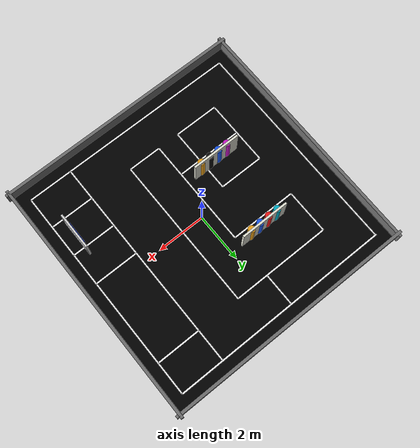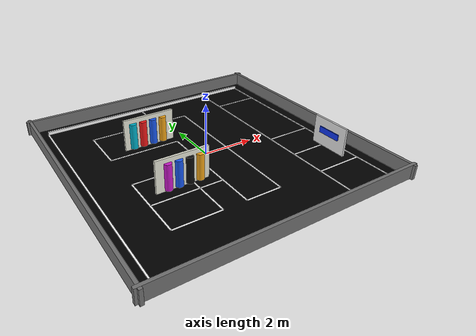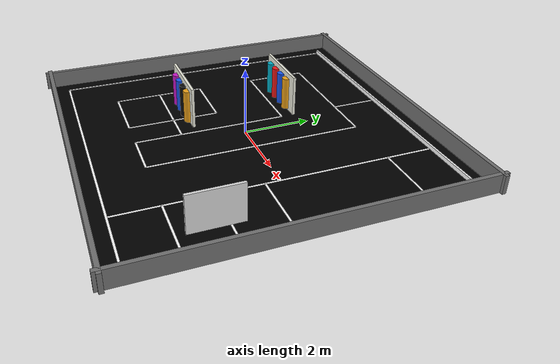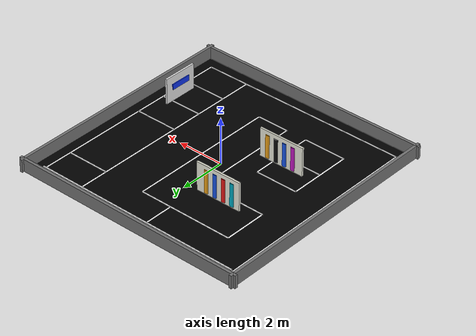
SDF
<?xml version="1.0"?>
<sdf version="1.6">
  <world name="smart_community">
    <plugin name="ros_api" filename="libgazebo_ros_api_plugin.so"/>

    <gravity>0 0 -9.8</gravity>
    <scene>
      <ambient>0.45 0.45 0.45 1</ambient>
      <background>0.72 0.74 0.76 1</background>
      <shadows>true</shadows>
    </scene>
    <gui fullscreen="0">
      <camera name="user_camera">
        <pose>0 -8 7 1.05 0 0</pose>
        <view_controller>orbit</view_controller>
      </camera>
    </gui>

    <light name="sun" type="directional">
      <pose>0 0 10 0 0 0</pose>
      <diffuse>0.9 0.9 0.85 1</diffuse>
      <specular>0.2 0.2 0.2 1</specular>
      <direction>-0.4 0.2 -0.9</direction>
    </light>

    <model name="map_floor">
      <static>true</static>
      <pose>0 0 0 0 0 0</pose>
      <link name="link">
        <collision name="collision"><geometry><box><size>10 10 0.04</size></box></geometry></collision>
        <visual name="black_map"><pose>0 0 0.025 0 0 0</pose><geometry><box><size>10 10 0.03</size></box></geometry><material><ambient>0 0 0 1</ambient><diffuse>0 0 0 1</diffuse></material></visual>
      </link>
    </model>

    <model name="map_white_lines">
      <static>true</static>
      <link name="lines">
        <!-- A1 outer_bottom | 0-10坐标 中心线坐标: (0,0) 到 (10,0) | 0-10占地: 左下(0,-0.03) 到 右上(10,0.03) | Gazebo中心: (0,-4.55,0.0405), Gazebo尺寸: 9.1 x 0.06 x 0.001 -->
        <visual name="A1_outer_bottom">
          <pose>0 -4.55 0.0405 0 0 0</pose>
          <geometry><box><size>9.1 0.06 0.001</size></box></geometry>
          <material><ambient>1 1 1 1</ambient><diffuse>1 1 1 1</diffuse></material>
        </visual>
        <!-- A2 outer_left | 0-10坐标 中心线坐标: (0,0) 到 (0,10) | 0-10占地: 左下(-0.03,0) 到 右上(0.03,10) | Gazebo中心: (-4.55,0,0.0405), Gazebo尺寸: 0.06 x 9.1 x 0.001 -->
        <visual name="A2_outer_left">
          <pose>-4.55 0 0.045 0 0 0</pose>
          <geometry><box><size>0.06 9.1 0.01</size></box></geometry>
          <material><ambient>1 1 1 1</ambient><diffuse>1 1 1 1</diffuse></material>
        </visual>
        <!-- A3 outer_top | 0-10坐标 中心线坐标: (0,10) 到 (10,10) | 0-10占地: 左下(0,9.97) 到 右上(10,10.03) | Gazebo中心: (0,4.55,0.0405), Gazebo尺寸: 9.1 x 0.06 x 0.001 -->
        <visual name="A3_outer_top">
          <pose>0 4.55 0.1025 0 0 0</pose>
          <geometry><box><size>9.1 0.06 0.125</size></box></geometry>
          <material><ambient>1 1 1 1</ambient><diffuse>1 1 1 1</diffuse></material>
        </visual>
        <!-- A4 outer_right | 0-10坐标 中心线坐标: (10,0) 到 (10,10) | 0-10占地: 左下(9.97,0) 到 右上(10.03,10) | Gazebo中心: (4.55,0,0.0405), Gazebo尺寸: 0.06 x 9.1 x 0.001 -->
        <visual name="A4_outer_right">
          <pose>4.55 0 0.0405 0 0 0</pose>
          <geometry><box><size>0.06 9.1 0.001</size></box></geometry>
          <material><ambient>1 1 1 1</ambient><diffuse>1 1 1 1</diffuse></material>
        </visual>
        <!-- B1 parking_top | 0-10坐标 中心线坐标: (8,8.5) 到 (10,8.5) | 0-10占地: 左下(8,8.47) 到 右上(10,8.53) | Gazebo中心: (3.64,3.185,0.0405), Gazebo尺寸: 1.82 x 0.06 x 0.001 -->
        <visual name="B1_parking_top">
          <pose>3.64 3.185 0.0405 0 0 0</pose>
          <geometry><box><size>1.82 0.06 0.001</size></box></geometry>
          <material><ambient>1 1 1 1</ambient><diffuse>1 1 1 1</diffuse></material>
        </visual>
        <!-- B2 parking_mid | 0-10坐标 中心线坐标: (8,4.5) 到 (10,4.5) | 0-10占地: 左下(8,4.47) 到 右上(10,4.53) | Gazebo中心: (3.64,-0.455,0.0405), Gazebo尺寸: 1.82 x 0.06 x 0.001 -->
        <visual name="B2_parking_mid">
          <pose>3.64 -0.455 0.0405 0 0 0</pose>
          <geometry><box><size>1.82 0.06 0.001</size></box></geometry>
          <material><ambient>1 1 1 1</ambient><diffuse>1 1 1 1</diffuse></material>
        </visual>
        <!-- B3 parking_lower_mid | 0-10坐标 中心线坐标: (8,3) 到 (10,3) | 0-10占地: 左下(8,2.97) 到 右上(10,3.03) | Gazebo中心: (3.64,-1.82,0.0405), Gazebo尺寸: 1.82 x 0.06 x 0.001 -->
        <visual name="B3_parking_lower_mid">
          <pose>3.64 -1.82 0.0405 0 0 0</pose>
          <geometry><box><size>1.82 0.06 0.001</size></box></geometry>
          <material><ambient>1 1 1 1</ambient><diffuse>1 1 1 1</diffuse></material>
        </visual>
        <!-- B4 parking_bottom | 0-10坐标 中心线坐标: (8,1.5) 到 (10,1.5) | 0-10占地: 左下(8,1.47) 到 右上(10,1.53) | Gazebo中心: (3.64,-3.185,0.0405), Gazebo尺寸: 1.82 x 0.06 x 0.001 -->
        <visual name="B4_parking_bottom">
          <pose>3.64 -3.185 0.0405 0 0 0</pose>
          <geometry><box><size>1.82 0.06 0.001</size></box></geometry>
          <material><ambient>1 1 1 1</ambient><diffuse>1 1 1 1</diffuse></material>
        </visual>
        <!-- B5 right_lane_left | 0-10坐标 中心线坐标: (8,0) 到 (8,10) | 0-10占地: 左下(7.97,0) 到 右上(8.03,10) | Gazebo中心: (2.73,0,0.0405), Gazebo尺寸: 0.06 x 9.1 x 0.001 -->
        <visual name="B5_right_lane_left">
          <pose>2.73 0 0.0405 0 0 0</pose>
          <geometry><box><size>0.06 9.1 0.001</size></box></geometry>
          <material><ambient>1 1 1 1</ambient><diffuse>1 1 1 1</diffuse></material>
        </visual>
        <!-- C1 lower_box_top | 0-10坐标 中心线坐标: (1.5,4.5) 到 (3.5,4.5) | 0-10占地: 左下(1.5,4.47) 到 右上(3.5,4.53) | Gazebo中心: (-2.275,-0.455,0.0405), Gazebo尺寸: 1.82 x 0.06 x 0.001 -->
        <visual name="C1_lower_box_top">
          <pose>-2.275 -0.455 0.0405 0 0 0</pose>
          <geometry><box><size>1.82 0.06 0.001</size></box></geometry>
          <material><ambient>1 1 1 1</ambient><diffuse>1 1 1 1</diffuse></material>
        </visual>
        <!-- C2 lower_box_left | 0-10坐标 中心线坐标: (1.5,1.5) 到 (1.5,4.5) | 0-10占地: 左下(1.47,1.5) 到 右上(1.53,4.5) | Gazebo中心: (-3.185,-1.82,0.0405), Gazebo尺寸: 0.06 x 2.73 x 0.001 -->
        <visual name="C2_lower_box_left">
          <pose>-3.185 -1.82 0.0405 0 0 0</pose>
          <geometry><box><size>0.06 2.73 0.001</size></box></geometry>
          <material><ambient>1 1 1 1</ambient><diffuse>1 1 1 1</diffuse></material>
        </visual>
        <!-- C3 lower_box_mid | 0-10坐标 中心线坐标: (1.5,3) 到 (3.5,3) | 0-10占地: 左下(1.5,2.97) 到 右上(3.5,3.03) | Gazebo中心: (-2.275,-1.82,0.0405), Gazebo尺寸: 1.82 x 0.06 x 0.001 -->
        <visual name="C3_lower_box_mid">
          <pose>-2.275 -1.82 0.0405 0 0 0</pose>
          <geometry><box><size>1.82 0.06 0.001</size></box></geometry>
          <material><ambient>1 1 1 1</ambient><diffuse>1 1 1 1</diffuse></material>
        </visual>
        <!-- C4 lower_box_bottom | 0-10坐标 中心线坐标: (1.5,1.5) 到 (3.5,1.5) | 0-10占地: 左下(1.5,1.47) 到 右上(3.5,1.53) | Gazebo中心: (-2.275,-3.185,0.0405), Gazebo尺寸: 1.82 x 0.06 x 0.001 -->
        <visual name="C4_lower_box_bottom">
          <pose>-2.275 -3.185 0.0405 0 0 0</pose>
          <geometry><box><size>1.82 0.06 0.001</size></box></geometry>
          <material><ambient>1 1 1 1</ambient><diffuse>1 1 1 1</diffuse></material>
        </visual>
        <!-- C5 lower_box_right | 0-10坐标 中心线坐标: (3.5,1.5) 到 (3.5,4.5) | 0-10占地: 左下(3.47,1.5) 到 右上(3.53,4.5) | Gazebo中心: (-1.365,-1.82,0.0405), Gazebo尺寸: 0.06 x 2.73 x 0.001 -->
        <visual name="C5_lower_box_right">
          <pose>-1.365 -1.82 0.0405 0 0 0</pose>
          <geometry><box><size>0.06 2.73 0.001</size></box></geometry>
          <material><ambient>1 1 1 1</ambient><diffuse>1 1 1 1</diffuse></material>
        </visual>
        <!-- D1 gate_h | 0-10坐标 中心线坐标: (3.5,3) 到 (4.5,3) | 0-10占地: 左下(3.5,2.97) 到 右上(4.5,3.03) | Gazebo中心: (-0.91,-1.82,0.0405), Gazebo尺寸: 0.91 x 0.06 x 0.001 -->
        <visual name="D1_gate_h">
          <pose>-0.91 -1.82 0.0405 0 0 0</pose>
          <geometry><box><size>0.91 0.06 0.001</size></box></geometry>
          <material><ambient>1 1 1 1</ambient><diffuse>1 1 1 1</diffuse></material>
        </visual>
        <!-- D2 top_gate_v | 0-10坐标 中心线坐标: (4.5,8.5) 到 (4.5,10) | 0-10占地: 左下(4.47,8.5) 到 右上(4.53,10) | Gazebo中心: (-0.455,3.868,0.0405), Gazebo尺寸: 0.06 x 1.365 x 0.001 -->
        <visual name="D2_top_gate_v">
          <pose>-0.455 3.868 0.0405 0 0 0</pose>
          <geometry><box><size>0.06 1.365 0.001</size></box></geometry>
          <material><ambient>1 1 1 1</ambient><diffuse>1 1 1 1</diffuse></material>
        </visual>
        <!-- E1 upper_box_bottom | 0-10坐标 中心线坐标: (1.5,6.5) 到 (4.5,6.5) | 0-10占地: 左下(1.5,6.47) 到 右上(4.5,6.53) | Gazebo中心: (-1.82,1.365,0.0405), Gazebo尺寸: 2.73 x 0.06 x 0.001 -->
        <visual name="E1_upper_box_bottom">
          <pose>-1.82 1.365 0.0405 0 0 0</pose>
          <geometry><box><size>2.73 0.06 0.001</size></box></geometry>
          <material><ambient>1 1 1 1</ambient><diffuse>1 1 1 1</diffuse></material>
        </visual>
        <!-- E2 upper_box_left | 0-10坐标 中心线坐标: (1.5,6.5) 到 (1.5,8.5) | 0-10占地: 左下(1.47,6.5) 到 右上(1.53,8.5) | Gazebo中心: (-3.185,2.275,0.0405), Gazebo尺寸: 0.06 x 1.82 x 0.001 -->
        <visual name="E2_upper_box_left">
          <pose>-3.185 2.275 0.0405 0 0 0</pose>
          <geometry><box><size>0.06 1.82 0.001</size></box></geometry>
          <material><ambient>1 1 1 1</ambient><diffuse>1 1 1 1</diffuse></material>
        </visual>
        <!-- E3 upper_box_top | 0-10坐标 中心线坐标: (1.5,8.5) 到 (6,8.5) | 0-10占地: 左下(1.5,8.47) 到 右上(6,8.53) | Gazebo中心: (-1.138,3.185,0.0405), Gazebo尺寸: 4.095 x 0.06 x 0.001 -->
        <visual name="E3_upper_box_top">
          <pose>-1.138 3.185 0.0405 0 0 0</pose>
          <geometry><box><size>4.095 0.06 0.001</size></box></geometry>
          <material><ambient>1 1 1 1</ambient><diffuse>1 1 1 1</diffuse></material>
        </visual>
        <!-- E4 center_block_left | 0-10坐标 中心线坐标: (4.5,1.5) 到 (4.5,6.5) | 0-10占地: 左下(4.47,1.5) 到 右上(4.53,6.5) | Gazebo中心: (-0.455,-0.91,0.0405), Gazebo尺寸: 0.06 x 4.55 x 0.001 -->
        <visual name="E4_center_block_left">
          <pose>-0.455 -0.91 0.0405 0 0 0</pose>
          <geometry><box><size>0.06 4.55 0.001</size></box></geometry>
          <material><ambient>1 1 1 1</ambient><diffuse>1 1 1 1</diffuse></material>
        </visual>
        <!-- E5 center_block_right | 0-10坐标 中心线坐标: (6,1.5) 到 (6,8.5) | 0-10占地: 左下(5.97,1.5) 到 右上(6.03,8.5) | Gazebo中心: (0.91,0,0.0405), Gazebo尺寸: 0.06 x 6.37 x 0.001 -->
        <visual name="E5_center_block_right">
          <pose>0.91 0 0.0405 0 0 0</pose>
          <geometry><box><size>0.06 6.37 0.001</size></box></geometry>
          <material><ambient>1 1 1 1</ambient><diffuse>1 1 1 1</diffuse></material>
        </visual>
        <!-- E6 center_block_bottom | 0-10坐标 中心线坐标: (4.5,1.5) 到 (6,1.5) | 0-10占地: 左下(4.5,1.47) 到 右上(6,1.53) | Gazebo中心: (0.228,-3.185,0.0405), Gazebo尺寸: 1.365 x 0.06 x 0.001 -->
        <visual name="E6_center_block_bottom">
          <pose>0.228 -3.185 0.0405 0 0 0</pose>
          <geometry><box><size>1.365 0.06 0.001</size></box></geometry>
          <material><ambient>1 1 1 1</ambient><diffuse>1 1 1 1</diffuse></material>
        </visual>
      </link>
    </model>
    <model name="outer_walls">
      <static>true</static>
      <link name="walls">
        <collision name="north_collision"><pose>0 5.05 0.28 0 0 0</pose><geometry><box><size>10.4 0.12 0.55</size></box></geometry></collision>
        <collision name="south_collision"><pose>0 -5.05 0.28 0 0 0</pose><geometry><box><size>10.4 0.12 0.55</size></box></geometry></collision>
        <collision name="east_collision"><pose>5.05 0 0.28 0 0 0</pose><geometry><box><size>0.12 10.4 0.55</size></box></geometry></collision>
        <collision name="west_collision"><pose>-5.05 0 0.28 0 0 0</pose><geometry><box><size>0.12 10.4 0.55</size></box></geometry></collision>
        <visual name="north"><pose>0 5.05 0.28 0 0 0</pose><geometry><box><size>10.4 0.12 0.55</size></box></geometry><material><ambient>0.45 0.45 0.45 1</ambient><diffuse>0.45 0.45 0.45 1</diffuse></material></visual>
        <visual name="south"><pose>0 -5.05 0.28 0 0 0</pose><geometry><box><size>10.4 0.12 0.55</size></box></geometry><material><ambient>0.45 0.45 0.45 1</ambient><diffuse>0.45 0.45 0.45 1</diffuse></material></visual>
        <visual name="east"><pose>5.05 0 0.28 0 0 0</pose><geometry><box><size>0.12 10.4 0.55</size></box></geometry><material><ambient>0.45 0.45 0.45 1</ambient><diffuse>0.45 0.45 0.45 1</diffuse></material></visual>
        <visual name="west"><pose>-5.05 0 0.28 0 0 0</pose><geometry><box><size>0.12 10.4 0.55</size></box></geometry><material><ambient>0.45 0.45 0.45 1</ambient><diffuse>0.45 0.45 0.45 1</diffuse></material></visual>
      </link>
    </model>
    <model name="people_area_1_board">
      <static>true</static>
      <pose>-1.45 1.75 0.65 0 0 0</pose>
      <link name="panel">
        <collision name="board_collision"><geometry><box><size>2.0 0.08 1.25</size></box></geometry></collision>
        <visual name="board"><geometry><box><size>2.0 0.08 1.25</size></box></geometry><material><ambient>0.92 0.92 0.86 1</ambient><diffuse>0.92 0.92 0.86 1</diffuse></material></visual>
        <visual name="resident_1"><pose>-0.65 -0.06 -0.05 0 0 0</pose><geometry><cylinder><radius>0.14</radius><length>1.0</length></cylinder></geometry><material><ambient>0.0 0.7 0.8 1</ambient><diffuse>0.0 0.7 0.8 1</diffuse></material></visual>
        <visual name="outsider"><pose>-0.25 -0.06 -0.05 0 0 0</pose><geometry><cylinder><radius>0.14</radius><length>1.0</length></cylinder></geometry><material><ambient>0.95 0.1 0.1 1</ambient><diffuse>0.95 0.1 0.1 1</diffuse></material></visual>
        <visual name="resident_2"><pose>0.15 -0.06 -0.05 0 0 0</pose><geometry><cylinder><radius>0.14</radius><length>1.0</length></cylinder></geometry><material><ambient>0.1 0.35 0.95 1</ambient><diffuse>0.1 0.35 0.95 1</diffuse></material></visual>
        <visual name="resident_3"><pose>0.55 -0.06 -0.05 0 0 0</pose><geometry><cylinder><radius>0.14</radius><length>1.0</length></cylinder></geometry><material><ambient>0.95 0.65 0.1 1</ambient><diffuse>0.95 0.65 0.1 1</diffuse></material></visual>
      </link>
    </model>

    <model name="people_area_2_board">
      <static>true</static>
      <pose>-1.75 -1.35 0.65 0 0 0</pose>
      <link name="panel">
        <collision name="board_collision"><geometry><box><size>2.0 0.08 1.25</size></box></geometry></collision>
        <visual name="board"><geometry><box><size>2.0 0.08 1.25</size></box></geometry><material><ambient>0.92 0.92 0.86 1</ambient><diffuse>0.92 0.92 0.86 1</diffuse></material></visual>
        <visual name="resident_1"><pose>-0.55 -0.06 -0.05 0 0 0</pose><geometry><cylinder><radius>0.14</radius><length>1.0</length></cylinder></geometry><material><ambient>0.8 0.1 0.8 1</ambient><diffuse>0.8 0.1 0.8 1</diffuse></material></visual>
        <visual name="resident_2"><pose>-0.15 -0.06 -0.05 0 0 0</pose><geometry><cylinder><radius>0.14</radius><length>1.0</length></cylinder></geometry><material><ambient>0.1 0.35 0.95 1</ambient><diffuse>0.1 0.35 0.95 1</diffuse></material></visual>
        <visual name="resident_3"><pose>0.25 -0.06 -0.05 0 0 0</pose><geometry><cylinder><radius>0.14</radius><length>1.0</length></cylinder></geometry><material><ambient>0.05 0.05 0.05 1</ambient><diffuse>0.05 0.05 0.05 1</diffuse></material></visual>
        <visual name="resident_4"><pose>0.65 -0.06 -0.05 0 0 0</pose><geometry><cylinder><radius>0.14</radius><length>1.0</length></cylinder></geometry><material><ambient>0.95 0.65 0.1 1</ambient><diffuse>0.95 0.65 0.1 1</diffuse></material></visual>
      </link>
    </model>

    <model name="plate_board">
      <static>true</static>
      <pose>4.05 -2.2 0.65 0 0 -1.5708</pose>
      <link name="panel">
        <collision name="board_collision"><geometry><box><size>1.5 0.08 1.1</size></box></geometry></collision>
        <visual name="board"><geometry><box><size>1.5 0.08 1.1</size></box></geometry><material><ambient>0.86 0.86 0.86 1</ambient><diffuse>0.86 0.86 0.86 1</diffuse></material></visual>
        <visual name="plate"><pose>0 -0.06 0.08 0 0 0</pose><geometry><box><size>0.9 0.04 0.24</size></box></geometry><material><ambient>0.05 0.20 0.90 1</ambient><diffuse>0.05 0.20 0.90 1</diffuse></material></visual>
      </link>
    </model>
  </world>
</sdf>
